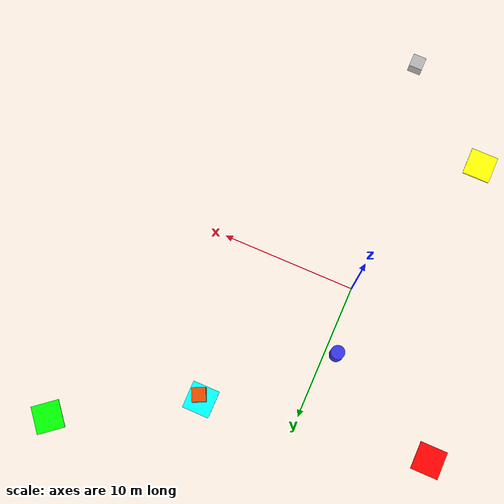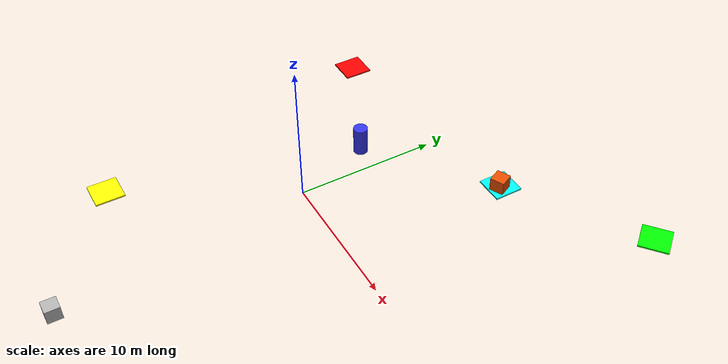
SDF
<sdf version="1.10">
 <world name="default">
  <gravity>0 0 -9.8000000000000007</gravity>
  <magnetic_field>5.5644999999999998e-06 2.2875799999999999e-05 -4.2388400000000002e-05</magnetic_field>
  <atmosphere type="adiabatic"/>
  <physics type="ode">
   <max_step_size>0.001</max_step_size>
   <real_time_factor>1</real_time_factor>
   <real_time_update_rate>1000</real_time_update_rate>
  </physics>
  <scene>
   <ambient>0.400000006 0.400000006 0.400000006 1</ambient>
   <background>0.699999988 0.699999988 0.699999988 1</background>
   <shadows>true</shadows>
  </scene>
  <model name="box">
   <pose>2.0240338126917621 -17.813887826349223 0.5 0 0 0</pose>
   <link name="box_link">
    <inertial>
     <inertia><ixx>0.16666</ixx><ixy>0</ixy><ixz>0</ixz><iyy>0.16666</iyy><iyz>0</iyz><izz>0.16666</izz></inertia>
     <mass>1</mass>
    </inertial>
    <collision name="box_collision"><geometry><box><size>1 1 1</size></box></geometry></collision>
    <visual name="box_visual">
     <geometry><box><size>1 1 1</size></box></geometry>
     <material>
      <ambient>0.300000012 0.300000012 0.300000012 1</ambient>
      <diffuse>0.699999988 0.699999988 0.699999988 1</diffuse>
      <specular>1 1 1 1</specular>
     </material>
    </visual>
   </link>
   <static>false</static>
  </model>
  <model name="starting_point">
   <pose>16.051700592041016 16.993200302124023 1.1535600423812866 0 0 0.67896763218306488</pose>
   <link name="starting_point_link">
    <visual name="starting_point_visual">
     <geometry><box><size>2 2 0.10000000000000001</size></box></geometry>
     <material>
      <ambient>0 1 0 1</ambient>
      <diffuse>0 1 0 1</diffuse>
      <specular>0.100000001 0.100000001 0.100000001 1</specular>
     </material>
    </visual>
    <collision name="starting_point_collision">
     <geometry><box><size>2 2 0.10000000000000001</size></box></geometry>
    </collision>
    <inertial>
     <mass>1</mass>
     <inertia><ixx>1</ixx><ixy>0</ixy><ixz>0</ixz><iyy>1</iyy><iyz>0</iyz><izz>1</izz></inertia>
    </inertial>
   </link>
   <static>true</static>
  </model>
  <model name="obstacle1">
   <pose>6.9615573883056641 11.398918151855469 1.2847100496292114 0 0 -2.6990200036964356</pose>
   <link name="obstacle1_link">
    <visual name="obstacle1_visual">
     <geometry><box><size>1 1 1</size></box></geometry>
     <material>
      <ambient>0.899999976 0.300000012 0 1</ambient>
      <diffuse>0.899999976 0.300000012 0 1</diffuse>
      <specular>0.100000001 0.100000001 0.100000001 1</specular>
     </material>
    </visual>
    <collision name="obstacle1_collision"><geometry><box><size>1 1 1</size></box></geometry></collision>
    <inertial>
     <mass>1</mass>
     <inertia><ixx>1</ixx><ixy>0</ixy><ixz>0</ixz><iyy>1</iyy><iyz>0</iyz><izz>1</izz></inertia>
    </inertial>
   </link>
   <static>true</static>
  </model>
  <model name="obstacle2">
   <pose>-0.76916301250457764 5 2.1243908405303955 0 0 0</pose>
   <link name="obstacle2_link">
    <visual name="obstacle2_visual">
     <geometry><cylinder><radius>0.5</radius><length>2</length></cylinder></geometry>
     <material>
      <ambient>0.200000003 0.200000003 0.899999976 1</ambient>
      <diffuse>0.200000003 0.200000003 0.899999976 1</diffuse>
      <specular>0.100000001 0.100000001 0.100000001 1</specular>
     </material>
    </visual>
    <collision name="obstacle2_collision">
     <geometry><cylinder><radius>0.5</radius><length>2</length></cylinder></geometry>
    </collision>
    <inertial>
     <mass>1</mass>
     <inertia><ixx>1</ixx><ixy>0</ixy><ixz>0</ixz><iyy>1</iyy><iyz>0</iyz><izz>1</izz></inertia>
    </inertial>
   </link>
   <static>true</static>
  </model>
  <model name="landing_spot1">
   <pose>-5.1370601654052734 -11.897000312805176 1.5374000072479248 0 0 0</pose>
   <link name="landing_spot1_link">
    <visual name="landing_spot2_visual">
     <geometry><box><size>2 2 0.10000000000000001</size></box></geometry>
     <material>
      <ambient>1 1 0 1</ambient>
      <diffuse>1 1 0 1</diffuse>
      <specular>0.100000001 0.100000001 0.100000001 1</specular>
     </material>
    </visual>
    <collision name="landing_spot2_collision">
     <geometry><box><size>2 2 0.10000000000000001</size></box></geometry>
    </collision>
    <inertial>
     <mass>1</mass>
     <inertia><ixx>1</ixx><ixy>0</ixy><ixz>0</ixz><iyy>1</iyy><iyz>0</iyz><izz>1</izz></inertia>
    </inertial>
   </link>
   <static>true</static>
  </model>
  <model name="landing_spot2">
   <pose>-9.5047397613525391 9.1986398696899414 1.1436785459518433 0 0 0</pose>
   <link name="landing_spot2_link">
    <visual name="landing_spot1_visual">
     <geometry><box><size>2 2 0.10000000000000001</size></box></geometry>
     <material>
      <ambient>1 0 0 1</ambient>
      <diffuse>1 0 0 1</diffuse>
      <specular>0.100000001 0.100000001 0.100000001 1</specular>
     </material>
    </visual>
    <collision name="landing_spot1_collision">
     <geometry><box><size>2 2 0.10000000000000001</size></box></geometry>
    </collision>
    <inertial>
     <mass>1</mass>
     <inertia><ixx>1</ixx><ixy>0</ixy><ixz>0</ixz><iyy>1</iyy><iyz>0</iyz><izz>1</izz></inertia>
    </inertial>
   </link>
   <static>true</static>
  </model>
  <model name="landing_spot3">
   <pose>6.7591400146484375 11.640000343322754 0.76113349199295044 0 0 0</pose>
   <link name="landing_spot3_link">
    <visual name="landing_spot3_visual">
     <geometry><box><size>2 2 0.10000000000000001</size></box></geometry>
     <material>
      <ambient>0 1 1 1</ambient>
      <diffuse>0 1 1 1</diffuse>
      <specular>0.100000001 0.100000001 0.100000001 1</specular>
     </material>
    </visual>
    <collision name="landing_spot3_collision">
     <geometry><box><size>2 2 0.10000000000000001</size></box></geometry>
    </collision>
    <inertial>
     <mass>1</mass>
     <inertia><ixx>1</ixx><ixy>0</ixy><ixz>0</ixz><iyy>1</iyy><iyz>0</iyz><izz>1</izz></inertia>
    </inertial>
   </link>
   <static>true</static>
  </model>
 </world>
</sdf>
